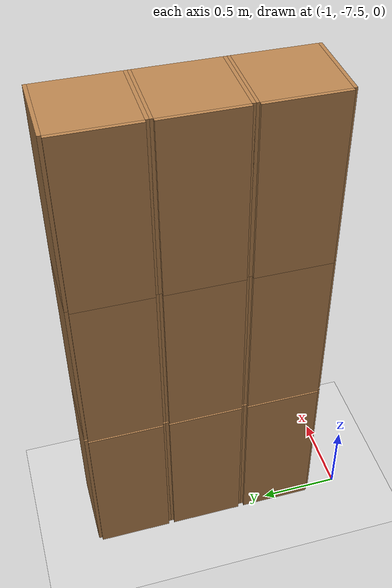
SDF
<sdf version="1.6">
 <world name="default">
  <model name="ground_plane">
   <static>1</static>
   <link name="link">
    <collision name="collision">
     <geometry><plane><normal>0 0 1</normal><size>100 100</size></plane></geometry>
     <surface>
      <contact><collide_bitmask>65535</collide_bitmask></contact>
      <friction><ode><mu>100</mu><mu2>50</mu2></ode></friction>
     </surface>
    </collision>
    <visual name="visual">
     <cast_shadows>0</cast_shadows>
     <geometry><plane><normal>0 0 1</normal><size>100 100</size></plane></geometry>
     <material>
      <script><uri>file://media/materials/scripts/gazebo.material</uri><name>Gazebo/Grey</name></script>
     </material>
    </visual>
   </link>
  </model>
  <model name="Locker18_clone_4_clone_2_clone_1_clone_clone_clone_2_clone_clone_2_clone_clone_1">
   <model name="Locker18">
    <model name="Locker3">
     <model name="cabinet">
      <static>1</static>
      <link name="cabinet_bottom_plate">
       <inertial>
        <pose>0 0 -1 0 -0 0</pose>
        <inertia><ixx>2.05</ixx><ixy>0</ixy><ixz>0</ixz><iyy>2.05</iyy><iyz>0</iyz><izz>2.05</izz></inertia>
        <mass>25</mass>
       </inertial>
       <collision name="cabinet_bottom_plate_geom">
        <pose>0 0 0.01 0 -0 0</pose>
        <geometry><box><size>0.45 0.45 0.02</size></box></geometry>
       </collision>
       <visual name="cabinet_bottom_plate_geom_visual">
        <pose>0 0 0.01 0 -0 0</pose>
        <geometry><box><size>0.45 0.45 0.02</size></box></geometry>
        <material>
         <script><uri>file://media/materials/scripts/gazebo.material</uri><name>Gazebo/Wood</name></script>
        </material>
       </visual>
       <collision name="cabinet_bottom_plate_geom_cabinet_back_plate">
        <pose>0.235 0 0.51 0 -0 0</pose>
        <geometry><box><size>0.02 0.45 1.02</size></box></geometry>
       </collision>
       <visual name="cabinet_bottom_plate_geom_cabinet_back_plate_visual">
        <pose>0.235 0 0.51 0 -0 0</pose>
        <geometry><box><size>0.02 0.45 1.02</size></box></geometry>
        <material>
         <script><uri>file://media/materials/scripts/gazebo.material</uri><name>Gazebo/Wood</name></script>
        </material>
       </visual>
       <collision name="cabinet_bottom_plate_geom_cabinet_left_plate">
        <pose>0 0.235 0.51 0 -0 0</pose>
        <geometry><box><size>0.45 0.02 1.02</size></box></geometry>
       </collision>
       <visual name="cabinet_bottom_plate_geom_cabinet_left_plate_visual">
        <pose>0 0.235 0.51 0 -0 0</pose>
        <geometry><box><size>0.45 0.02 1.02</size></box></geometry>
        <material>
         <script><uri>file://media/materials/scripts/gazebo.material</uri><name>Gazebo/Wood</name></script>
        </material>
       </visual>
       <collision name="cabinet_bottom_plate_geom_cabinet_middle_plate">
        <pose>0 0 0.51 0 -0 0</pose>
        <geometry><box><size>0.45 0.45 0.02</size></box></geometry>
       </collision>
       <visual name="cabinet_bottom_plate_geom_cabinet_middle_plate_visual">
        <pose>0 0 0.51 0 -0 0</pose>
        <geometry><box><size>0.45 0.45 0.02</size></box></geometry>
        <material>
         <script><uri>file://media/materials/scripts/gazebo.material</uri><name>Gazebo/Wood</name></script>
        </material>
       </visual>
       <collision name="cabinet_bottom_plate_geom_cabinet_right_plate">
        <pose>0 -0.235 0.51 0 -0 0</pose>
        <geometry><box><size>0.45 0.02 1.02</size></box></geometry>
       </collision>
       <visual name="cabinet_bottom_plate_geom_cabinet_right_plate_visual">
        <pose>0 -0.235 0.51 0 -0 0</pose>
        <geometry><box><size>0.45 0.02 1.02</size></box></geometry>
        <material>
         <script><uri>file://media/materials/scripts/gazebo.material</uri><name>Gazebo/Wood</name></script>
        </material>
       </visual>
       <collision name="cabinet_bottom_plate_geom_cabinet_top_plate">
        <pose>0 0 1.01 0 -0 0</pose>
        <geometry><box><size>0.45 0.45 0.02</size></box></geometry>
       </collision>
       <visual name="cabinet_bottom_plate_geom_cabinet_top_plate_visual">
        <pose>0 0 1.01 0 -0 0</pose>
        <geometry><box><size>0.45 0.45 0.02</size></box></geometry>
        <material>
         <script><uri>file://media/materials/scripts/gazebo.material</uri><name>Gazebo/Wood</name></script>
        </material>
       </visual>
      </link>
      <pose>-0.676968 1.45758 0 0 -0 0</pose>
     </model>
     <model name="cabinet_clone">
      <static>1</static>
      <link name="cabinet_bottom_plate">
       <inertial>
        <pose>0 0 -1 0 -0 0</pose>
        <inertia><ixx>2.05</ixx><ixy>0</ixy><ixz>0</ixz><iyy>2.05</iyy><iyz>0</iyz><izz>2.05</izz></inertia>
        <mass>25</mass>
       </inertial>
       <collision name="cabinet_bottom_plate_geom">
        <pose>0 0 0.01 0 -0 0</pose>
        <geometry><box><size>0.45 0.45 0.02</size></box></geometry>
       </collision>
       <visual name="cabinet_bottom_plate_geom_visual">
        <pose>0 0 0.01 0 -0 0</pose>
        <geometry><box><size>0.45 0.45 0.02</size></box></geometry>
        <material>
         <script><uri>file://media/materials/scripts/gazebo.material</uri><name>Gazebo/Wood</name></script>
        </material>
       </visual>
       <collision name="cabinet_bottom_plate_geom_cabinet_back_plate">
        <pose>0.235 0 0.51 0 -0 0</pose>
        <geometry><box><size>0.02 0.45 1.02</size></box></geometry>
       </collision>
       <visual name="cabinet_bottom_plate_geom_cabinet_back_plate_visual">
        <pose>0.235 0 0.51 0 -0 0</pose>
        <geometry><box><size>0.02 0.45 1.02</size></box></geometry>
        <material>
         <script><uri>file://media/materials/scripts/gazebo.material</uri><name>Gazebo/Wood</name></script>
        </material>
       </visual>
       <collision name="cabinet_bottom_plate_geom_cabinet_left_plate">
        <pose>0 0.235 0.51 0 -0 0</pose>
        <geometry><box><size>0.45 0.02 1.02</size></box></geometry>
       </collision>
       <visual name="cabinet_bottom_plate_geom_cabinet_left_plate_visual">
        <pose>0 0.235 0.51 0 -0 0</pose>
        <geometry><box><size>0.45 0.02 1.02</size></box></geometry>
        <material>
         <script><uri>file://media/materials/scripts/gazebo.material</uri><name>Gazebo/Wood</name></script>
        </material>
       </visual>
       <collision name="cabinet_bottom_plate_geom_cabinet_middle_plate">
        <pose>0 0 0.51 0 -0 0</pose>
        <geometry><box><size>0.45 0.45 0.02</size></box></geometry>
       </collision>
       <visual name="cabinet_bottom_plate_geom_cabinet_middle_plate_visual">
        <pose>0 0 0.51 0 -0 0</pose>
        <geometry><box><size>0.45 0.45 0.02</size></box></geometry>
        <material>
         <script><uri>file://media/materials/scripts/gazebo.material</uri><name>Gazebo/Wood</name></script>
        </material>
       </visual>
       <collision name="cabinet_bottom_plate_geom_cabinet_right_plate">
        <pose>0 -0.235 0.51 0 -0 0</pose>
        <geometry><box><size>0.45 0.02 1.02</size></box></geometry>
       </collision>
       <visual name="cabinet_bottom_plate_geom_cabinet_right_plate_visual">
        <pose>0 -0.235 0.51 0 -0 0</pose>
        <geometry><box><size>0.45 0.02 1.02</size></box></geometry>
        <material>
         <script><uri>file://media/materials/scripts/gazebo.material</uri><name>Gazebo/Wood</name></script>
        </material>
       </visual>
       <collision name="cabinet_bottom_plate_geom_cabinet_top_plate">
        <pose>0 0 1.01 0 -0 0</pose>
        <geometry><box><size>0.45 0.45 0.02</size></box></geometry>
       </collision>
       <visual name="cabinet_bottom_plate_geom_cabinet_top_plate_visual">
        <pose>0 0 1.01 0 -0 0</pose>
        <geometry><box><size>0.45 0.45 0.02</size></box></geometry>
        <material>
         <script><uri>file://media/materials/scripts/gazebo.material</uri><name>Gazebo/Wood</name></script>
        </material>
       </visual>
      </link>
      <pose>-0.676968 0.970971 0 0 -0 0</pose>
     </model>
     <model name="cabinet_clone_0">
      <static>1</static>
      <link name="cabinet_bottom_plate">
       <inertial>
        <pose>0 0 -1 0 -0 0</pose>
        <inertia><ixx>2.05</ixx><ixy>0</ixy><ixz>0</ixz><iyy>2.05</iyy><iyz>0</iyz><izz>2.05</izz></inertia>
        <mass>25</mass>
       </inertial>
       <collision name="cabinet_bottom_plate_geom">
        <pose>0 0 0.01 0 -0 0</pose>
        <geometry><box><size>0.45 0.45 0.02</size></box></geometry>
       </collision>
       <visual name="cabinet_bottom_plate_geom_visual">
        <pose>0 0 0.01 0 -0 0</pose>
        <geometry><box><size>0.45 0.45 0.02</size></box></geometry>
        <material>
         <script><uri>file://media/materials/scripts/gazebo.material</uri><name>Gazebo/Wood</name></script>
        </material>
       </visual>
       <collision name="cabinet_bottom_plate_geom_cabinet_back_plate">
        <pose>0.235 0 0.51 0 -0 0</pose>
        <geometry><box><size>0.02 0.45 1.02</size></box></geometry>
       </collision>
       <visual name="cabinet_bottom_plate_geom_cabinet_back_plate_visual">
        <pose>0.235 0 0.51 0 -0 0</pose>
        <geometry><box><size>0.02 0.45 1.02</size></box></geometry>
        <material>
         <script><uri>file://media/materials/scripts/gazebo.material</uri><name>Gazebo/Wood</name></script>
        </material>
       </visual>
       <collision name="cabinet_bottom_plate_geom_cabinet_left_plate">
        <pose>0 0.235 0.51 0 -0 0</pose>
        <geometry><box><size>0.45 0.02 1.02</size></box></geometry>
       </collision>
       <visual name="cabinet_bottom_plate_geom_cabinet_left_plate_visual">
        <pose>0 0.235 0.51 0 -0 0</pose>
        <geometry><box><size>0.45 0.02 1.02</size></box></geometry>
        <material>
         <script><uri>file://media/materials/scripts/gazebo.material</uri><name>Gazebo/Wood</name></script>
        </material>
       </visual>
       <collision name="cabinet_bottom_plate_geom_cabinet_middle_plate">
        <pose>0 0 0.51 0 -0 0</pose>
        <geometry><box><size>0.45 0.45 0.02</size></box></geometry>
       </collision>
       <visual name="cabinet_bottom_plate_geom_cabinet_middle_plate_visual">
        <pose>0 0 0.51 0 -0 0</pose>
        <geometry><box><size>0.45 0.45 0.02</size></box></geometry>
        <material>
         <script><uri>file://media/materials/scripts/gazebo.material</uri><name>Gazebo/Wood</name></script>
        </material>
       </visual>
       <collision name="cabinet_bottom_plate_geom_cabinet_right_plate">
        <pose>0 -0.235 0.51 0 -0 0</pose>
        <geometry><box><size>0.45 0.02 1.02</size></box></geometry>
       </collision>
       <visual name="cabinet_bottom_plate_geom_cabinet_right_plate_visual">
        <pose>0 -0.235 0.51 0 -0 0</pose>
        <geometry><box><size>0.45 0.02 1.02</size></box></geometry>
        <material>
         <script><uri>file://media/materials/scripts/gazebo.material</uri><name>Gazebo/Wood</name></script>
        </material>
       </visual>
       <collision name="cabinet_bottom_plate_geom_cabinet_top_plate">
        <pose>0 0 1.01 0 -0 0</pose>
        <geometry><box><size>0.45 0.45 0.02</size></box></geometry>
       </collision>
       <visual name="cabinet_bottom_plate_geom_cabinet_top_plate_visual">
        <pose>0 0 1.01 0 -0 0</pose>
        <geometry><box><size>0.45 0.45 0.02</size></box></geometry>
        <material>
         <script><uri>file://media/materials/scripts/gazebo.material</uri><name>Gazebo/Wood</name></script>
        </material>
       </visual>
      </link>
      <pose>-0.676968 0.48391 0 0 -0 0</pose>
     </model>
     <static>0</static>
     <pose>0 3e-06 -1.02763 0 -0 0</pose>
    </model>
    <model name="Locker3_clone">
     <model name="cabinet">
      <static>1</static>
      <link name="cabinet_bottom_plate">
       <inertial>
        <pose>0 0 -1 0 -0 0</pose>
        <inertia><ixx>2.05</ixx><ixy>0</ixy><ixz>0</ixz><iyy>2.05</iyy><iyz>0</iyz><izz>2.05</izz></inertia>
        <mass>25</mass>
       </inertial>
       <collision name="cabinet_bottom_plate_geom">
        <pose>0 0 0.01 0 -0 0</pose>
        <geometry><box><size>0.45 0.45 0.02</size></box></geometry>
       </collision>
       <visual name="cabinet_bottom_plate_geom_visual">
        <pose>0 0 0.01 0 -0 0</pose>
        <geometry><box><size>0.45 0.45 0.02</size></box></geometry>
        <material>
         <script><uri>file://media/materials/scripts/gazebo.material</uri><name>Gazebo/Wood</name></script>
        </material>
       </visual>
       <collision name="cabinet_bottom_plate_geom_cabinet_back_plate">
        <pose>0.235 0 0.51 0 -0 0</pose>
        <geometry><box><size>0.02 0.45 1.02</size></box></geometry>
       </collision>
       <visual name="cabinet_bottom_plate_geom_cabinet_back_plate_visual">
        <pose>0.235 0 0.51 0 -0 0</pose>
        <geometry><box><size>0.02 0.45 1.02</size></box></geometry>
        <material>
         <script><uri>file://media/materials/scripts/gazebo.material</uri><name>Gazebo/Wood</name></script>
        </material>
       </visual>
       <collision name="cabinet_bottom_plate_geom_cabinet_left_plate">
        <pose>0 0.235 0.51 0 -0 0</pose>
        <geometry><box><size>0.45 0.02 1.02</size></box></geometry>
       </collision>
       <visual name="cabinet_bottom_plate_geom_cabinet_left_plate_visual">
        <pose>0 0.235 0.51 0 -0 0</pose>
        <geometry><box><size>0.45 0.02 1.02</size></box></geometry>
        <material>
         <script><uri>file://media/materials/scripts/gazebo.material</uri><name>Gazebo/Wood</name></script>
        </material>
       </visual>
       <collision name="cabinet_bottom_plate_geom_cabinet_middle_plate">
        <pose>0 0 0.51 0 -0 0</pose>
        <geometry><box><size>0.45 0.45 0.02</size></box></geometry>
       </collision>
       <visual name="cabinet_bottom_plate_geom_cabinet_middle_plate_visual">
        <pose>0 0 0.51 0 -0 0</pose>
        <geometry><box><size>0.45 0.45 0.02</size></box></geometry>
        <material>
         <script><uri>file://media/materials/scripts/gazebo.material</uri><name>Gazebo/Wood</name></script>
        </material>
       </visual>
       <collision name="cabinet_bottom_plate_geom_cabinet_right_plate">
        <pose>0 -0.235 0.51 0 -0 0</pose>
        <geometry><box><size>0.45 0.02 1.02</size></box></geometry>
       </collision>
       <visual name="cabinet_bottom_plate_geom_cabinet_right_plate_visual">
        <pose>0 -0.235 0.51 0 -0 0</pose>
        <geometry><box><size>0.45 0.02 1.02</size></box></geometry>
        <material>
         <script><uri>file://media/materials/scripts/gazebo.material</uri><name>Gazebo/Wood</name></script>
        </material>
       </visual>
       <collision name="cabinet_bottom_plate_geom_cabinet_top_plate">
        <pose>0 0 1.01 0 -0 0</pose>
        <geometry><box><size>0.45 0.45 0.02</size></box></geometry>
       </collision>
       <visual name="cabinet_bottom_plate_geom_cabinet_top_plate_visual">
        <pose>0 0 1.01 0 -0 0</pose>
        <geometry><box><size>0.45 0.45 0.02</size></box></geometry>
        <material>
         <script><uri>file://media/materials/scripts/gazebo.material</uri><name>Gazebo/Wood</name></script>
        </material>
       </visual>
      </link>
      <pose>-0.676968 1.45758 0 0 -0 0</pose>
     </model>
     <model name="cabinet_clone">
      <static>1</static>
      <link name="cabinet_bottom_plate">
       <inertial>
        <pose>0 0 -1 0 -0 0</pose>
        <inertia><ixx>2.05</ixx><ixy>0</ixy><ixz>0</ixz><iyy>2.05</iyy><iyz>0</iyz><izz>2.05</izz></inertia>
        <mass>25</mass>
       </inertial>
       <collision name="cabinet_bottom_plate_geom">
        <pose>0 0 0.01 0 -0 0</pose>
        <geometry><box><size>0.45 0.45 0.02</size></box></geometry>
       </collision>
       <visual name="cabinet_bottom_plate_geom_visual">
        <pose>0 0 0.01 0 -0 0</pose>
        <geometry><box><size>0.45 0.45 0.02</size></box></geometry>
        <material>
         <script><uri>file://media/materials/scripts/gazebo.material</uri><name>Gazebo/Wood</name></script>
        </material>
       </visual>
       <collision name="cabinet_bottom_plate_geom_cabinet_back_plate">
        <pose>0.235 0 0.51 0 -0 0</pose>
        <geometry><box><size>0.02 0.45 1.02</size></box></geometry>
       </collision>
       <visual name="cabinet_bottom_plate_geom_cabinet_back_plate_visual">
        <pose>0.235 0 0.51 0 -0 0</pose>
        <geometry><box><size>0.02 0.45 1.02</size></box></geometry>
        <material>
         <script><uri>file://media/materials/scripts/gazebo.material</uri><name>Gazebo/Wood</name></script>
        </material>
       </visual>
       <collision name="cabinet_bottom_plate_geom_cabinet_left_plate">
        <pose>0 0.235 0.51 0 -0 0</pose>
        <geometry><box><size>0.45 0.02 1.02</size></box></geometry>
       </collision>
       <visual name="cabinet_bottom_plate_geom_cabinet_left_plate_visual">
        <pose>0 0.235 0.51 0 -0 0</pose>
        <geometry><box><size>0.45 0.02 1.02</size></box></geometry>
        <material>
         <script><uri>file://media/materials/scripts/gazebo.material</uri><name>Gazebo/Wood</name></script>
        </material>
       </visual>
       <collision name="cabinet_bottom_plate_geom_cabinet_middle_plate">
        <pose>0 0 0.51 0 -0 0</pose>
        <geometry><box><size>0.45 0.45 0.02</size></box></geometry>
       </collision>
       <visual name="cabinet_bottom_plate_geom_cabinet_middle_plate_visual">
        <pose>0 0 0.51 0 -0 0</pose>
        <geometry><box><size>0.45 0.45 0.02</size></box></geometry>
        <material>
         <script><uri>file://media/materials/scripts/gazebo.material</uri><name>Gazebo/Wood</name></script>
        </material>
       </visual>
       <collision name="cabinet_bottom_plate_geom_cabinet_right_plate">
        <pose>0 -0.235 0.51 0 -0 0</pose>
        <geometry><box><size>0.45 0.02 1.02</size></box></geometry>
       </collision>
       <visual name="cabinet_bottom_plate_geom_cabinet_right_plate_visual">
        <pose>0 -0.235 0.51 0 -0 0</pose>
        <geometry><box><size>0.45 0.02 1.02</size></box></geometry>
        <material>
         <script><uri>file://media/materials/scripts/gazebo.material</uri><name>Gazebo/Wood</name></script>
        </material>
       </visual>
       <collision name="cabinet_bottom_plate_geom_cabinet_top_plate">
        <pose>0 0 1.01 0 -0 0</pose>
        <geometry><box><size>0.45 0.45 0.02</size></box></geometry>
       </collision>
       <visual name="cabinet_bottom_plate_geom_cabinet_top_plate_visual">
        <pose>0 0 1.01 0 -0 0</pose>
        <geometry><box><size>0.45 0.45 0.02</size></box></geometry>
        <material>
         <script><uri>file://media/materials/scripts/gazebo.material</uri><name>Gazebo/Wood</name></script>
        </material>
       </visual>
      </link>
      <pose>-0.676968 0.970971 0 0 -0 0</pose>
     </model>
     <model name="cabinet_clone_0">
      <static>1</static>
      <link name="cabinet_bottom_plate">
       <inertial>
        <pose>0 0 -1 0 -0 0</pose>
        <inertia><ixx>2.05</ixx><ixy>0</ixy><ixz>0</ixz><iyy>2.05</iyy><iyz>0</iyz><izz>2.05</izz></inertia>
        <mass>25</mass>
       </inertial>
       <collision name="cabinet_bottom_plate_geom">
        <pose>0 0 0.01 0 -0 0</pose>
        <geometry><box><size>0.45 0.45 0.02</size></box></geometry>
       </collision>
       <visual name="cabinet_bottom_plate_geom_visual">
        <pose>0 0 0.01 0 -0 0</pose>
        <geometry><box><size>0.45 0.45 0.02</size></box></geometry>
        <material>
         <script><uri>file://media/materials/scripts/gazebo.material</uri><name>Gazebo/Wood</name></script>
        </material>
       </visual>
       <collision name="cabinet_bottom_plate_geom_cabinet_back_plate">
        <pose>0.235 0 0.51 0 -0 0</pose>
        <geometry><box><size>0.02 0.45 1.02</size></box></geometry>
       </collision>
       <visual name="cabinet_bottom_plate_geom_cabinet_back_plate_visual">
        <pose>0.235 0 0.51 0 -0 0</pose>
        <geometry><box><size>0.02 0.45 1.02</size></box></geometry>
        <material>
         <script><uri>file://media/materials/scripts/gazebo.material</uri><name>Gazebo/Wood</name></script>
        </material>
       </visual>
       <collision name="cabinet_bottom_plate_geom_cabinet_left_plate">
        <pose>0 0.235 0.51 0 -0 0</pose>
        <geometry><box><size>0.45 0.02 1.02</size></box></geometry>
       </collision>
       <visual name="cabinet_bottom_plate_geom_cabinet_left_plate_visual">
        <pose>0 0.235 0.51 0 -0 0</pose>
        <geometry><box><size>0.45 0.02 1.02</size></box></geometry>
        <material>
         <script><uri>file://media/materials/scripts/gazebo.material</uri><name>Gazebo/Wood</name></script>
        </material>
       </visual>
       <collision name="cabinet_bottom_plate_geom_cabinet_middle_plate">
        <pose>0 0 0.51 0 -0 0</pose>
        <geometry><box><size>0.45 0.45 0.02</size></box></geometry>
       </collision>
       <visual name="cabinet_bottom_plate_geom_cabinet_middle_plate_visual">
        <pose>0 0 0.51 0 -0 0</pose>
        <geometry><box><size>0.45 0.45 0.02</size></box></geometry>
        <material>
         <script><uri>file://media/materials/scripts/gazebo.material</uri><name>Gazebo/Wood</name></script>
        </material>
       </visual>
       <collision name="cabinet_bottom_plate_geom_cabinet_right_plate">
        <pose>0 -0.235 0.51 0 -0 0</pose>
        <geometry><box><size>0.45 0.02 1.02</size></box></geometry>
       </collision>
       <visual name="cabinet_bottom_plate_geom_cabinet_right_plate_visual">
        <pose>0 -0.235 0.51 0 -0 0</pose>
        <geometry><box><size>0.45 0.02 1.02</size></box></geometry>
        <material>
         <script><uri>file://media/materials/scripts/gazebo.material</uri><name>Gazebo/Wood</name></script>
        </material>
       </visual>
       <collision name="cabinet_bottom_plate_geom_cabinet_top_plate">
        <pose>0 0 1.01 0 -0 0</pose>
        <geometry><box><size>0.45 0.45 0.02</size></box></geometry>
       </collision>
       <visual name="cabinet_bottom_plate_geom_cabinet_top_plate_visual">
        <pose>0 0 1.01 0 -0 0</pose>
        <geometry><box><size>0.45 0.45 0.02</size></box></geometry>
        <material>
         <script><uri>file://media/materials/scripts/gazebo.material</uri><name>Gazebo/Wood</name></script>
        </material>
       </visual>
      </link>
      <pose>-0.676968 0.48391 0 0 -0 0</pose>
     </model>
     <static>0</static>
     <pose>0 3e-06 0.003717 0 -0 0</pose>
    </model>
    <model name="Locker3_clone_clone">
     <model name="cabinet">
      <static>1</static>
      <link name="cabinet_bottom_plate">
       <inertial>
        <pose>0 0 -1 0 -0 0</pose>
        <inertia><ixx>2.05</ixx><ixy>0</ixy><ixz>0</ixz><iyy>2.05</iyy><iyz>0</iyz><izz>2.05</izz></inertia>
        <mass>25</mass>
       </inertial>
       <collision name="cabinet_bottom_plate_geom">
        <pose>0 0 0.01 0 -0 0</pose>
        <geometry><box><size>0.45 0.45 0.02</size></box></geometry>
       </collision>
       <visual name="cabinet_bottom_plate_geom_visual">
        <pose>0 0 0.01 0 -0 0</pose>
        <geometry><box><size>0.45 0.45 0.02</size></box></geometry>
        <material>
         <script><uri>file://media/materials/scripts/gazebo.material</uri><name>Gazebo/Wood</name></script>
        </material>
       </visual>
       <collision name="cabinet_bottom_plate_geom_cabinet_back_plate">
        <pose>0.235 0 0.51 0 -0 0</pose>
        <geometry><box><size>0.02 0.45 1.02</size></box></geometry>
       </collision>
       <visual name="cabinet_bottom_plate_geom_cabinet_back_plate_visual">
        <pose>0.235 0 0.51 0 -0 0</pose>
        <geometry><box><size>0.02 0.45 1.02</size></box></geometry>
        <material>
         <script><uri>file://media/materials/scripts/gazebo.material</uri><name>Gazebo/Wood</name></script>
        </material>
       </visual>
       <collision name="cabinet_bottom_plate_geom_cabinet_left_plate">
        <pose>0 0.235 0.51 0 -0 0</pose>
        <geometry><box><size>0.45 0.02 1.02</size></box></geometry>
       </collision>
       <visual name="cabinet_bottom_plate_geom_cabinet_left_plate_visual">
        <pose>0 0.235 0.51 0 -0 0</pose>
        <geometry><box><size>0.45 0.02 1.02</size></box></geometry>
        <material>
         <script><uri>file://media/materials/scripts/gazebo.material</uri><name>Gazebo/Wood</name></script>
        </material>
       </visual>
       <collision name="cabinet_bottom_plate_geom_cabinet_middle_plate">
        <pose>0 0 0.51 0 -0 0</pose>
        <geometry><box><size>0.45 0.45 0.02</size></box></geometry>
       </collision>
       <visual name="cabinet_bottom_plate_geom_cabinet_middle_plate_visual">
        <pose>0 0 0.51 0 -0 0</pose>
        <geometry><box><size>0.45 0.45 0.02</size></box></geometry>
        <material>
         <script><uri>file://media/materials/scripts/gazebo.material</uri><name>Gazebo/Wood</name></script>
        </material>
       </visual>
       <collision name="cabinet_bottom_plate_geom_cabinet_right_plate">
        <pose>0 -0.235 0.51 0 -0 0</pose>
        <geometry><box><size>0.45 0.02 1.02</size></box></geometry>
       </collision>
       <visual name="cabinet_bottom_plate_geom_cabinet_right_plate_visual">
        <pose>0 -0.235 0.51 0 -0 0</pose>
        <geometry><box><size>0.45 0.02 1.02</size></box></geometry>
        <material>
         <script><uri>file://media/materials/scripts/gazebo.material</uri><name>Gazebo/Wood</name></script>
        </material>
       </visual>
       <collision name="cabinet_bottom_plate_geom_cabinet_top_plate">
        <pose>0 0 1.01 0 -0 0</pose>
        <geometry><box><size>0.45 0.45 0.02</size></box></geometry>
       </collision>
       <visual name="cabinet_bottom_plate_geom_cabinet_top_plate_visual">
        <pose>0 0 1.01 0 -0 0</pose>
        <geometry><box><size>0.45 0.45 0.02</size></box></geometry>
        <material>
         <script><uri>file://media/materials/scripts/gazebo.material</uri><name>Gazebo/Wood</name></script>
        </material>
       </visual>
      </link>
      <pose>-0.676968 1.45758 0 0 -0 0</pose>
     </model>
     <model name="cabinet_clone">
      <static>1</static>
      <link name="cabinet_bottom_plate">
       <inertial>
        <pose>0 0 -1 0 -0 0</pose>
        <inertia><ixx>2.05</ixx><ixy>0</ixy><ixz>0</ixz><iyy>2.05</iyy><iyz>0</iyz><izz>2.05</izz></inertia>
        <mass>25</mass>
       </inertial>
       <collision name="cabinet_bottom_plate_geom">
        <pose>0 0 0.01 0 -0 0</pose>
        <geometry><box><size>0.45 0.45 0.02</size></box></geometry>
       </collision>
       <visual name="cabinet_bottom_plate_geom_visual">
        <pose>0 0 0.01 0 -0 0</pose>
        <geometry><box><size>0.45 0.45 0.02</size></box></geometry>
        <material>
         <script><uri>file://media/materials/scripts/gazebo.material</uri><name>Gazebo/Wood</name></script>
        </material>
       </visual>
       <collision name="cabinet_bottom_plate_geom_cabinet_back_plate">
        <pose>0.235 0 0.51 0 -0 0</pose>
        <geometry><box><size>0.02 0.45 1.02</size></box></geometry>
       </collision>
       <visual name="cabinet_bottom_plate_geom_cabinet_back_plate_visual">
        <pose>0.235 0 0.51 0 -0 0</pose>
        <geometry><box><size>0.02 0.45 1.02</size></box></geometry>
        <material>
         <script><uri>file://media/materials/scripts/gazebo.material</uri><name>Gazebo/Wood</name></script>
        </material>
       </visual>
       <collision name="cabinet_bottom_plate_geom_cabinet_left_plate">
        <pose>0 0.235 0.51 0 -0 0</pose>
        <geometry><box><size>0.45 0.02 1.02</size></box></geometry>
       </collision>
       <visual name="cabinet_bottom_plate_geom_cabinet_left_plate_visual">
        <pose>0 0.235 0.51 0 -0 0</pose>
        <geometry><box><size>0.45 0.02 1.02</size></box></geometry>
        <material>
         <script><uri>file://media/materials/scripts/gazebo.material</uri><name>Gazebo/Wood</name></script>
        </material>
       </visual>
       <collision name="cabinet_bottom_plate_geom_cabinet_middle_plate">
        <pose>0 0 0.51 0 -0 0</pose>
        <geometry><box><size>0.45 0.45 0.02</size></box></geometry>
       </collision>
       <visual name="cabinet_bottom_plate_geom_cabinet_middle_plate_visual">
        <pose>0 0 0.51 0 -0 0</pose>
        <geometry><box><size>0.45 0.45 0.02</size></box></geometry>
        <material>
         <script><uri>file://media/materials/scripts/gazebo.material</uri><name>Gazebo/Wood</name></script>
        </material>
       </visual>
       <collision name="cabinet_bottom_plate_geom_cabinet_right_plate">
        <pose>0 -0.235 0.51 0 -0 0</pose>
        <geometry><box><size>0.45 0.02 1.02</size></box></geometry>
       </collision>
       <visual name="cabinet_bottom_plate_geom_cabinet_right_plate_visual">
        <pose>0 -0.235 0.51 0 -0 0</pose>
        <geometry><box><size>0.45 0.02 1.02</size></box></geometry>
        <material>
         <script><uri>file://media/materials/scripts/gazebo.material</uri><name>Gazebo/Wood</name></script>
        </material>
       </visual>
       <collision name="cabinet_bottom_plate_geom_cabinet_top_plate">
        <pose>0 0 1.01 0 -0 0</pose>
        <geometry><box><size>0.45 0.45 0.02</size></box></geometry>
       </collision>
       <visual name="cabinet_bottom_plate_geom_cabinet_top_plate_visual">
        <pose>0 0 1.01 0 -0 0</pose>
        <geometry><box><size>0.45 0.45 0.02</size></box></geometry>
        <material>
         <script><uri>file://media/materials/scripts/gazebo.material</uri><name>Gazebo/Wood</name></script>
        </material>
       </visual>
      </link>
      <pose>-0.676968 0.970971 0 0 -0 0</pose>
     </model>
     <model name="cabinet_clone_0">
      <static>1</static>
      <link name="cabinet_bottom_plate">
       <inertial>
        <pose>0 0 -1 0 -0 0</pose>
        <inertia><ixx>2.05</ixx><ixy>0</ixy><ixz>0</ixz><iyy>2.05</iyy><iyz>0</iyz><izz>2.05</izz></inertia>
        <mass>25</mass>
       </inertial>
       <collision name="cabinet_bottom_plate_geom">
        <pose>0 0 0.01 0 -0 0</pose>
        <geometry><box><size>0.45 0.45 0.02</size></box></geometry>
       </collision>
       <visual name="cabinet_bottom_plate_geom_visual">
        <pose>0 0 0.01 0 -0 0</pose>
        <geometry><box><size>0.45 0.45 0.02</size></box></geometry>
        <material>
         <script><uri>file://media/materials/scripts/gazebo.material</uri><name>Gazebo/Wood</name></script>
        </material>
       </visual>
       <collision name="cabinet_bottom_plate_geom_cabinet_back_plate">
        <pose>0.235 0 0.51 0 -0 0</pose>
        <geometry><box><size>0.02 0.45 1.02</size></box></geometry>
       </collision>
       <visual name="cabinet_bottom_plate_geom_cabinet_back_plate_visual">
        <pose>0.235 0 0.51 0 -0 0</pose>
        <geometry><box><size>0.02 0.45 1.02</size></box></geometry>
        <material>
         <script><uri>file://media/materials/scripts/gazebo.material</uri><name>Gazebo/Wood</name></script>
        </material>
       </visual>
       <collision name="cabinet_bottom_plate_geom_cabinet_left_plate">
        <pose>0 0.235 0.51 0 -0 0</pose>
        <geometry><box><size>0.45 0.02 1.02</size></box></geometry>
       </collision>
       <visual name="cabinet_bottom_plate_geom_cabinet_left_plate_visual">
        <pose>0 0.235 0.51 0 -0 0</pose>
        <geometry><box><size>0.45 0.02 1.02</size></box></geometry>
        <material>
         <script><uri>file://media/materials/scripts/gazebo.material</uri><name>Gazebo/Wood</name></script>
        </material>
       </visual>
       <collision name="cabinet_bottom_plate_geom_cabinet_middle_plate">
        <pose>0 0 0.51 0 -0 0</pose>
        <geometry><box><size>0.45 0.45 0.02</size></box></geometry>
       </collision>
       <visual name="cabinet_bottom_plate_geom_cabinet_middle_plate_visual">
        <pose>0 0 0.51 0 -0 0</pose>
        <geometry><box><size>0.45 0.45 0.02</size></box></geometry>
        <material>
         <script><uri>file://media/materials/scripts/gazebo.material</uri><name>Gazebo/Wood</name></script>
        </material>
       </visual>
       <collision name="cabinet_bottom_plate_geom_cabinet_right_plate">
        <pose>0 -0.235 0.51 0 -0 0</pose>
        <geometry><box><size>0.45 0.02 1.02</size></box></geometry>
       </collision>
       <visual name="cabinet_bottom_plate_geom_cabinet_right_plate_visual">
        <pose>0 -0.235 0.51 0 -0 0</pose>
        <geometry><box><size>0.45 0.02 1.02</size></box></geometry>
        <material>
         <script><uri>file://media/materials/scripts/gazebo.material</uri><name>Gazebo/Wood</name></script>
        </material>
       </visual>
       <collision name="cabinet_bottom_plate_geom_cabinet_top_plate">
        <pose>0 0 1.01 0 -0 0</pose>
        <geometry><box><size>0.45 0.45 0.02</size></box></geometry>
       </collision>
       <visual name="cabinet_bottom_plate_geom_cabinet_top_plate_visual">
        <pose>0 0 1.01 0 -0 0</pose>
        <geometry><box><size>0.45 0.45 0.02</size></box></geometry>
        <material>
         <script><uri>file://media/materials/scripts/gazebo.material</uri><name>Gazebo/Wood</name></script>
        </material>
       </visual>
      </link>
      <pose>-0.676968 0.48391 0 0 -0 0</pose>
     </model>
     <static>0</static>
     <pose>0 3e-06 1.02391 0 -0 0</pose>
    </model>
    <static>0</static>
    <pose>-0 4e-06 4e-06 0 -0 0</pose>
   </model>
   <static>0</static>
   <pose>-1.4992 -5.58753 1.08672 0 -0 3.14119</pose>
  </model>
 </world>
</sdf>
